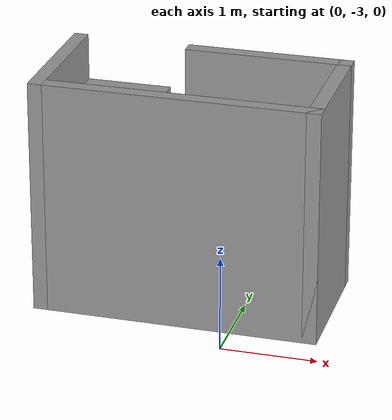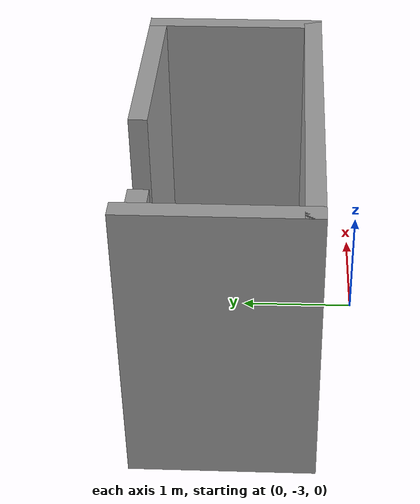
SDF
<?xml version='1.0'?>
<sdf version='1.6'>
<world name='test'>
<model name='test'>
    <pose frame=''>-0.595 -1.905 0 0 -0 0</pose>
    <link name='Door_0'>
      <collision name='Door_0_Collision'>
        <geometry>
          <box>
            <size>0.9 0.17 2</size>
          </box>
        </geometry>
        <pose frame=''>0 0 1 0 -0 0</pose>
      </collision>
      <visual name='Door_0_Visual'>
        <pose frame=''>0 0 1 0 -0 0</pose>
        <geometry>
          <box>
            <size>0.9 0.17 2</size>
          </box>
        </geometry>
        <material>
          <script>
            <uri>file://media/materials/scripts/gazebo.material</uri>
            <name>Gazebo/Grey</name>
          </script>
        </material>
      </visual>
      <pose frame=''>-0.905 0.675 0 0 -0 0</pose>
    </link>
    <link name='Wall_0'>
      <collision name='Wall_0_Collision'>
        <geometry>
          <box>
            <size>1.5 0.15 2.5</size>
          </box>
        </geometry>
        <pose frame=''>0 0 1.25 0 -0 0</pose>
      </collision>
      <visual name='Wall_0_Visual'>
        <pose frame=''>0 0 1.25 0 -0 0</pose>
        <geometry>
          <box>
            <size>1.5 0.15 2.5</size>
          </box>
        </geometry>
        <material>
          <script>
            <uri>file://media/materials/scripts/gazebo.material</uri>
            <name>Gazebo/Grey</name>
          </script>
          <ambient>1 1 1 1</ambient>
        </material>
      </visual>
      <pose frame=''>-1.425 0 0 0 0 -1.5708</pose>
    </link>
    <link name='Wall_1'>
      <collision name='Wall_1_Collision'>
        <geometry>
          <box>
            <size>3 0.15 2.5</size>
          </box>
        </geometry>
        <pose frame=''>0 0 1.25 0 -0 0</pose>
      </collision>
      <visual name='Wall_1_Visual'>
        <pose frame=''>0 0 1.25 0 -0 0</pose>
        <geometry>
          <box>
            <size>3 0.15 2.5</size>
          </box>
        </geometry>
        <material>
          <script>
            <uri>file://media/materials/scripts/gazebo.material</uri>
            <name>Gazebo/Grey</name>
          </script>
          <ambient>1 1 1 1</ambient>
        </material>
      </visual>
      <pose frame=''>0 -0.675 0 0 -0 0</pose>
    </link>
    <link name='Wall_2'>
      <collision name='Wall_2_Collision'>
        <geometry>
          <box>
            <size>1.5 0.15 2.5</size>
          </box>
        </geometry>
        <pose frame=''>0 0 1.25 0 -0 0</pose>
      </collision>
      <visual name='Wall_2_Visual'>
        <pose frame=''>0 0 1.25 0 -0 0</pose>
        <geometry>
          <box>
            <size>1.5 0.15 2.5</size>
          </box>
        </geometry>
        <material>
          <script>
            <uri>file://media/materials/scripts/gazebo.material</uri>
            <name>Gazebo/Grey</name>
          </script>
          <ambient>1 1 1 1</ambient>
        </material>
      </visual>
      <pose frame=''>1.425 0 0 0 -0 1.5708</pose>
    </link>
    <link name='Wall_3'>
      <collision name='Wall_3_Collision'>
        <geometry>
          <box>
            <size>1.75 0.15 2.5</size>
          </box>
        </geometry>
        <pose frame=''>0 0 1.25 0 -0 0</pose>
      </collision>
      <visual name='Wall_3_Visual'>
        <pose frame=''>0 0 1.25 0 -0 0</pose>
        <geometry>
          <box>
            <size>1.75 0.15 2.5</size>
          </box>
        </geometry>
        <material>
          <script>
            <uri>file://media/materials/scripts/gazebo.material</uri>
            <name>Gazebo/Grey</name>
          </script>
          <ambient>1 1 1 1</ambient>
        </material>
      </visual>
      <pose frame=''>0.625 0.675 0 0 -0 3.14159</pose>
    </link>
    <static>1</static>
  </model>
</world>
</sdf>
